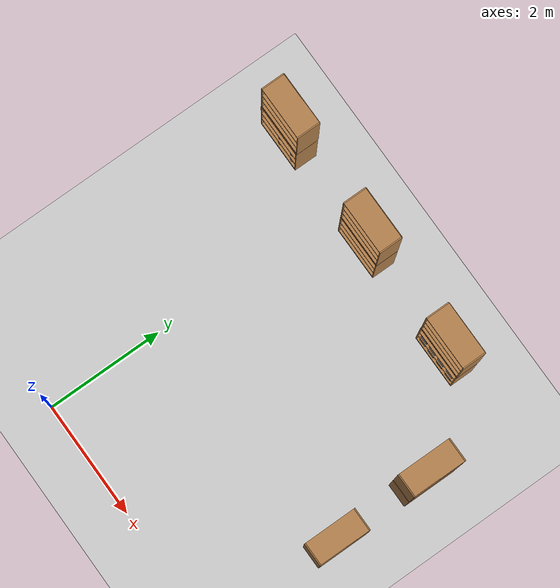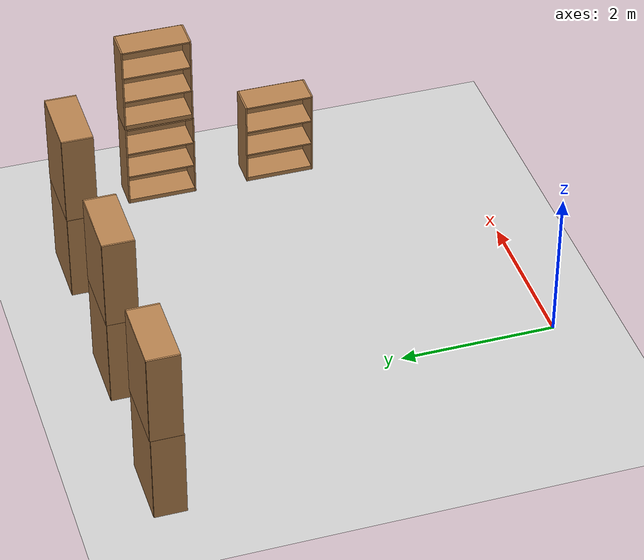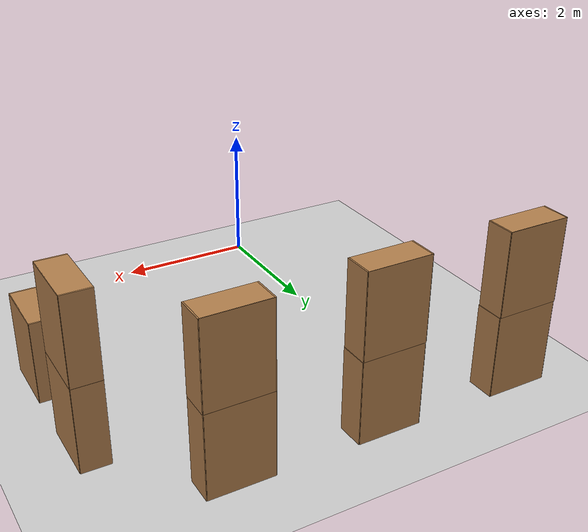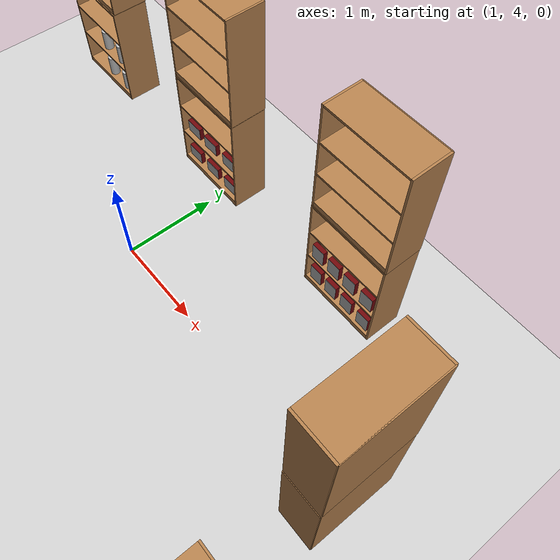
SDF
<sdf version="1.7">
 <world name="default">
  <model name="ground_plane">
   <static>1</static>
   <link name="link">
    <collision name="collision">
     <geometry><plane><normal>0 0 1</normal><size>100 100</size></plane></geometry>
     <surface><friction><ode><mu>100</mu><mu2>50</mu2></ode></friction></surface>
    </collision>
    <visual name="visual">
     <cast_shadows>0</cast_shadows>
     <geometry><plane><normal>0 0 1</normal><size>100 100</size></plane></geometry>
     <material>
      <script><uri>file://media/materials/scripts/gazebo.material</uri><name>Gazebo/Grey</name></script>
     </material>
    </visual>
   </link>
  </model>
  <model name="bookshelf">
   <static>1</static>
   <link name="link">
    <inertial><mass>1</mass></inertial>
    <collision name="back">
     <pose>0 0.005 0.6 0 -0 0</pose>
     <geometry><box><size>0.9 0.01 1.2</size></box></geometry>
    </collision>
    <visual name="visual1">
     <pose>0 0.005 0.6 0 -0 0</pose>
     <geometry><box><size>0.9 0.01 1.2</size></box></geometry>
     <material>
      <script><uri>file://media/materials/scripts/gazebo.material</uri><name>Gazebo/Wood</name></script>
     </material>
    </visual>
    <collision name="left_side">
     <pose>0.45 -0.195 0.6 0 -0 0</pose>
     <geometry><box><size>0.02 0.4 1.2</size></box></geometry>
    </collision>
    <visual name="visual2">
     <pose>0.45 -0.195 0.6 0 -0 0</pose>
     <geometry><box><size>0.02 0.4 1.2</size></box></geometry>
     <material>
      <script><uri>file://media/materials/scripts/gazebo.material</uri><name>Gazebo/Wood</name></script>
     </material>
    </visual>
    <collision name="right_side">
     <pose>-0.45 -0.195 0.6 0 -0 0</pose>
     <geometry><box><size>0.02 0.4 1.2</size></box></geometry>
    </collision>
    <visual name="visual3">
     <pose>-0.45 -0.195 0.6 0 -0 0</pose>
     <geometry><box><size>0.02 0.4 1.2</size></box></geometry>
     <material>
      <script><uri>file://media/materials/scripts/gazebo.material</uri><name>Gazebo/Wood</name></script>
     </material>
    </visual>
    <collision name="bottom">
     <pose>0 -0.195 0.03 0 -0 0</pose>
     <geometry><box><size>0.88 0.4 0.06</size></box></geometry>
    </collision>
    <visual name="visual4">
     <pose>0 -0.195 0.03 0 -0 0</pose>
     <geometry><box><size>0.88 0.4 0.06</size></box></geometry>
     <material>
      <script><uri>file://media/materials/scripts/gazebo.material</uri><name>Gazebo/Wood</name></script>
     </material>
    </visual>
    <collision name="top">
     <pose>0 -0.195 1.19 0 -0 0</pose>
     <geometry><box><size>0.88 0.4 0.02</size></box></geometry>
    </collision>
    <visual name="visual5">
     <pose>0 -0.195 1.19 0 -0 0</pose>
     <geometry><box><size>0.88 0.4 0.02</size></box></geometry>
     <material>
      <script><uri>file://media/materials/scripts/gazebo.material</uri><name>Gazebo/Wood</name></script>
     </material>
    </visual>
    <collision name="low_shelf">
     <pose>0 -0.195 0.43 0 -0 0</pose>
     <geometry><box><size>0.88 0.4 0.02</size></box></geometry>
    </collision>
    <visual name="visual6">
     <pose>0 -0.195 0.43 0 -0 0</pose>
     <geometry><box><size>0.88 0.4 0.02</size></box></geometry>
     <material>
      <script><uri>file://media/materials/scripts/gazebo.material</uri><name>Gazebo/Wood</name></script>
     </material>
    </visual>
    <collision name="high_shelf">
     <pose>0 -0.195 0.8 0 -0 0</pose>
     <geometry><box><size>0.88 0.4 0.02</size></box></geometry>
    </collision>
    <visual name="visual7">
     <pose>0 -0.195 0.8 0 -0 0</pose>
     <geometry><box><size>0.88 0.4 0.02</size></box></geometry>
     <material>
      <script><uri>file://media/materials/scripts/gazebo.material</uri><name>Gazebo/Wood</name></script>
     </material>
    </visual>
   </link>
   <pose>2.83268 5.58259 0 0 -0 0</pose>
  </model>
  <model name="bookshelf_1">
   <static>1</static>
   <link name="link">
    <inertial><mass>1</mass></inertial>
    <collision name="back">
     <pose>0 0.005 0.6 0 -0 0</pose>
     <geometry><box><size>0.9 0.01 1.2</size></box></geometry>
    </collision>
    <visual name="visual1">
     <pose>0 0.005 0.6 0 -0 0</pose>
     <geometry><box><size>0.9 0.01 1.2</size></box></geometry>
     <material>
      <script><uri>file://media/materials/scripts/gazebo.material</uri><name>Gazebo/Wood</name></script>
     </material>
    </visual>
    <collision name="left_side">
     <pose>0.45 -0.195 0.6 0 -0 0</pose>
     <geometry><box><size>0.02 0.4 1.2</size></box></geometry>
    </collision>
    <visual name="visual2">
     <pose>0.45 -0.195 0.6 0 -0 0</pose>
     <geometry><box><size>0.02 0.4 1.2</size></box></geometry>
     <material>
      <script><uri>file://media/materials/scripts/gazebo.material</uri><name>Gazebo/Wood</name></script>
     </material>
    </visual>
    <collision name="right_side">
     <pose>-0.45 -0.195 0.6 0 -0 0</pose>
     <geometry><box><size>0.02 0.4 1.2</size></box></geometry>
    </collision>
    <visual name="visual3">
     <pose>-0.45 -0.195 0.6 0 -0 0</pose>
     <geometry><box><size>0.02 0.4 1.2</size></box></geometry>
     <material>
      <script><uri>file://media/materials/scripts/gazebo.material</uri><name>Gazebo/Wood</name></script>
     </material>
    </visual>
    <collision name="bottom">
     <pose>0 -0.195 0.03 0 -0 0</pose>
     <geometry><box><size>0.88 0.4 0.06</size></box></geometry>
    </collision>
    <visual name="visual4">
     <pose>0 -0.195 0.03 0 -0 0</pose>
     <geometry><box><size>0.88 0.4 0.06</size></box></geometry>
     <material>
      <script><uri>file://media/materials/scripts/gazebo.material</uri><name>Gazebo/Wood</name></script>
     </material>
    </visual>
    <collision name="top">
     <pose>0 -0.195 1.19 0 -0 0</pose>
     <geometry><box><size>0.88 0.4 0.02</size></box></geometry>
    </collision>
    <visual name="visual5">
     <pose>0 -0.195 1.19 0 -0 0</pose>
     <geometry><box><size>0.88 0.4 0.02</size></box></geometry>
     <material>
      <script><uri>file://media/materials/scripts/gazebo.material</uri><name>Gazebo/Wood</name></script>
     </material>
    </visual>
    <collision name="low_shelf">
     <pose>0 -0.195 0.43 0 -0 0</pose>
     <geometry><box><size>0.88 0.4 0.02</size></box></geometry>
    </collision>
    <visual name="visual6">
     <pose>0 -0.195 0.43 0 -0 0</pose>
     <geometry><box><size>0.88 0.4 0.02</size></box></geometry>
     <material>
      <script><uri>file://media/materials/scripts/gazebo.material</uri><name>Gazebo/Wood</name></script>
     </material>
    </visual>
    <collision name="high_shelf">
     <pose>0 -0.195 0.8 0 -0 0</pose>
     <geometry><box><size>0.88 0.4 0.02</size></box></geometry>
    </collision>
    <visual name="visual7">
     <pose>0 -0.195 0.8 0 -0 0</pose>
     <geometry><box><size>0.88 0.4 0.02</size></box></geometry>
     <material>
      <script><uri>file://media/materials/scripts/gazebo.material</uri><name>Gazebo/Wood</name></script>
     </material>
    </visual>
   </link>
   <pose>0.770602 5.5901 0 0 -0 0</pose>
  </model>
  <model name="bookshelf_2_clone">
   <static>1</static>
   <link name="link">
    <inertial><mass>1</mass></inertial>
    <collision name="back">
     <pose>0 0.005 0.6 0 -0 0</pose>
     <geometry><box><size>0.9 0.01 1.2</size></box></geometry>
    </collision>
    <visual name="visual1">
     <pose>0 0.005 0.6 0 -0 0</pose>
     <geometry><box><size>0.9 0.01 1.2</size></box></geometry>
     <material>
      <script><uri>file://media/materials/scripts/gazebo.material</uri><name>Gazebo/Wood</name></script>
     </material>
    </visual>
    <collision name="left_side">
     <pose>0.45 -0.195 0.6 0 -0 0</pose>
     <geometry><box><size>0.02 0.4 1.2</size></box></geometry>
    </collision>
    <visual name="visual2">
     <pose>0.45 -0.195 0.6 0 -0 0</pose>
     <geometry><box><size>0.02 0.4 1.2</size></box></geometry>
     <material>
      <script><uri>file://media/materials/scripts/gazebo.material</uri><name>Gazebo/Wood</name></script>
     </material>
    </visual>
    <collision name="right_side">
     <pose>-0.45 -0.195 0.6 0 -0 0</pose>
     <geometry><box><size>0.02 0.4 1.2</size></box></geometry>
    </collision>
    <visual name="visual3">
     <pose>-0.45 -0.195 0.6 0 -0 0</pose>
     <geometry><box><size>0.02 0.4 1.2</size></box></geometry>
     <material>
      <script><uri>file://media/materials/scripts/gazebo.material</uri><name>Gazebo/Wood</name></script>
     </material>
    </visual>
    <collision name="bottom">
     <pose>0 -0.195 0.03 0 -0 0</pose>
     <geometry><box><size>0.88 0.4 0.06</size></box></geometry>
    </collision>
    <visual name="visual4">
     <pose>0 -0.195 0.03 0 -0 0</pose>
     <geometry><box><size>0.88 0.4 0.06</size></box></geometry>
     <material>
      <script><uri>file://media/materials/scripts/gazebo.material</uri><name>Gazebo/Wood</name></script>
     </material>
    </visual>
    <collision name="top">
     <pose>0 -0.195 1.19 0 -0 0</pose>
     <geometry><box><size>0.88 0.4 0.02</size></box></geometry>
    </collision>
    <visual name="visual5">
     <pose>0 -0.195 1.19 0 -0 0</pose>
     <geometry><box><size>0.88 0.4 0.02</size></box></geometry>
     <material>
      <script><uri>file://media/materials/scripts/gazebo.material</uri><name>Gazebo/Wood</name></script>
     </material>
    </visual>
    <collision name="low_shelf">
     <pose>0 -0.195 0.43 0 -0 0</pose>
     <geometry><box><size>0.88 0.4 0.02</size></box></geometry>
    </collision>
    <visual name="visual6">
     <pose>0 -0.195 0.43 0 -0 0</pose>
     <geometry><box><size>0.88 0.4 0.02</size></box></geometry>
     <material>
      <script><uri>file://media/materials/scripts/gazebo.material</uri><name>Gazebo/Wood</name></script>
     </material>
    </visual>
    <collision name="high_shelf">
     <pose>0 -0.195 0.8 0 -0 0</pose>
     <geometry><box><size>0.88 0.4 0.02</size></box></geometry>
    </collision>
    <visual name="visual7">
     <pose>0 -0.195 0.8 0 -0 0</pose>
     <geometry><box><size>0.88 0.4 0.02</size></box></geometry>
     <material>
      <script><uri>file://media/materials/scripts/gazebo.material</uri><name>Gazebo/Wood</name></script>
     </material>
    </visual>
   </link>
   <pose>-1.30264 5.59901 0 0 -0 0</pose>
  </model>
  <model name="bookshelf_3_clone">
   <static>1</static>
   <link name="link">
    <inertial><mass>1</mass></inertial>
    <collision name="back">
     <pose>0 0.005 0.6 0 -0 0</pose>
     <geometry><box><size>0.9 0.01 1.2</size></box></geometry>
    </collision>
    <visual name="visual1">
     <pose>0 0.005 0.6 0 -0 0</pose>
     <geometry><box><size>0.9 0.01 1.2</size></box></geometry>
     <material>
      <script><uri>file://media/materials/scripts/gazebo.material</uri><name>Gazebo/Wood</name></script>
     </material>
    </visual>
    <collision name="left_side">
     <pose>0.45 -0.195 0.6 0 -0 0</pose>
     <geometry><box><size>0.02 0.4 1.2</size></box></geometry>
    </collision>
    <visual name="visual2">
     <pose>0.45 -0.195 0.6 0 -0 0</pose>
     <geometry><box><size>0.02 0.4 1.2</size></box></geometry>
     <material>
      <script><uri>file://media/materials/scripts/gazebo.material</uri><name>Gazebo/Wood</name></script>
     </material>
    </visual>
    <collision name="right_side">
     <pose>-0.45 -0.195 0.6 0 -0 0</pose>
     <geometry><box><size>0.02 0.4 1.2</size></box></geometry>
    </collision>
    <visual name="visual3">
     <pose>-0.45 -0.195 0.6 0 -0 0</pose>
     <geometry><box><size>0.02 0.4 1.2</size></box></geometry>
     <material>
      <script><uri>file://media/materials/scripts/gazebo.material</uri><name>Gazebo/Wood</name></script>
     </material>
    </visual>
    <collision name="bottom">
     <pose>0 -0.195 0.03 0 -0 0</pose>
     <geometry><box><size>0.88 0.4 0.06</size></box></geometry>
    </collision>
    <visual name="visual4">
     <pose>0 -0.195 0.03 0 -0 0</pose>
     <geometry><box><size>0.88 0.4 0.06</size></box></geometry>
     <material>
      <script><uri>file://media/materials/scripts/gazebo.material</uri><name>Gazebo/Wood</name></script>
     </material>
    </visual>
    <collision name="top">
     <pose>0 -0.195 1.19 0 -0 0</pose>
     <geometry><box><size>0.88 0.4 0.02</size></box></geometry>
    </collision>
    <visual name="visual5">
     <pose>0 -0.195 1.19 0 -0 0</pose>
     <geometry><box><size>0.88 0.4 0.02</size></box></geometry>
     <material>
      <script><uri>file://media/materials/scripts/gazebo.material</uri><name>Gazebo/Wood</name></script>
     </material>
    </visual>
    <collision name="low_shelf">
     <pose>0 -0.195 0.43 0 -0 0</pose>
     <geometry><box><size>0.88 0.4 0.02</size></box></geometry>
    </collision>
    <visual name="visual6">
     <pose>0 -0.195 0.43 0 -0 0</pose>
     <geometry><box><size>0.88 0.4 0.02</size></box></geometry>
     <material>
      <script><uri>file://media/materials/scripts/gazebo.material</uri><name>Gazebo/Wood</name></script>
     </material>
    </visual>
    <collision name="high_shelf">
     <pose>0 -0.195 0.8 0 -0 0</pose>
     <geometry><box><size>0.88 0.4 0.02</size></box></geometry>
    </collision>
    <visual name="visual7">
     <pose>0 -0.195 0.8 0 -0 0</pose>
     <geometry><box><size>0.88 0.4 0.02</size></box></geometry>
     <material>
      <script><uri>file://media/materials/scripts/gazebo.material</uri><name>Gazebo/Wood</name></script>
     </material>
    </visual>
   </link>
   <pose>-1.30336 5.6079 1.20481 0 -0 0</pose>
  </model>
  <model name="bookshelf_3_clone_clone_0">
   <static>1</static>
   <link name="link">
    <inertial><mass>1</mass></inertial>
    <collision name="back">
     <pose>0 0.005 0.6 0 -0 0</pose>
     <geometry><box><size>0.9 0.01 1.2</size></box></geometry>
    </collision>
    <visual name="visual1">
     <pose>0 0.005 0.6 0 -0 0</pose>
     <geometry><box><size>0.9 0.01 1.2</size></box></geometry>
     <material>
      <script><uri>file://media/materials/scripts/gazebo.material</uri><name>Gazebo/Wood</name></script>
     </material>
    </visual>
    <collision name="left_side">
     <pose>0.45 -0.195 0.6 0 -0 0</pose>
     <geometry><box><size>0.02 0.4 1.2</size></box></geometry>
    </collision>
    <visual name="visual2">
     <pose>0.45 -0.195 0.6 0 -0 0</pose>
     <geometry><box><size>0.02 0.4 1.2</size></box></geometry>
     <material>
      <script><uri>file://media/materials/scripts/gazebo.material</uri><name>Gazebo/Wood</name></script>
     </material>
    </visual>
    <collision name="right_side">
     <pose>-0.45 -0.195 0.6 0 -0 0</pose>
     <geometry><box><size>0.02 0.4 1.2</size></box></geometry>
    </collision>
    <visual name="visual3">
     <pose>-0.45 -0.195 0.6 0 -0 0</pose>
     <geometry><box><size>0.02 0.4 1.2</size></box></geometry>
     <material>
      <script><uri>file://media/materials/scripts/gazebo.material</uri><name>Gazebo/Wood</name></script>
     </material>
    </visual>
    <collision name="bottom">
     <pose>0 -0.195 0.03 0 -0 0</pose>
     <geometry><box><size>0.88 0.4 0.06</size></box></geometry>
    </collision>
    <visual name="visual4">
     <pose>0 -0.195 0.03 0 -0 0</pose>
     <geometry><box><size>0.88 0.4 0.06</size></box></geometry>
     <material>
      <script><uri>file://media/materials/scripts/gazebo.material</uri><name>Gazebo/Wood</name></script>
     </material>
    </visual>
    <collision name="top">
     <pose>0 -0.195 1.19 0 -0 0</pose>
     <geometry><box><size>0.88 0.4 0.02</size></box></geometry>
    </collision>
    <visual name="visual5">
     <pose>0 -0.195 1.19 0 -0 0</pose>
     <geometry><box><size>0.88 0.4 0.02</size></box></geometry>
     <material>
      <script><uri>file://media/materials/scripts/gazebo.material</uri><name>Gazebo/Wood</name></script>
     </material>
    </visual>
    <collision name="low_shelf">
     <pose>0 -0.195 0.43 0 -0 0</pose>
     <geometry><box><size>0.88 0.4 0.02</size></box></geometry>
    </collision>
    <visual name="visual6">
     <pose>0 -0.195 0.43 0 -0 0</pose>
     <geometry><box><size>0.88 0.4 0.02</size></box></geometry>
     <material>
      <script><uri>file://media/materials/scripts/gazebo.material</uri><name>Gazebo/Wood</name></script>
     </material>
    </visual>
    <collision name="high_shelf">
     <pose>0 -0.195 0.8 0 -0 0</pose>
     <geometry><box><size>0.88 0.4 0.02</size></box></geometry>
    </collision>
    <visual name="visual7">
     <pose>0 -0.195 0.8 0 -0 0</pose>
     <geometry><box><size>0.88 0.4 0.02</size></box></geometry>
     <material>
      <script><uri>file://media/materials/scripts/gazebo.material</uri><name>Gazebo/Wood</name></script>
     </material>
    </visual>
   </link>
   <pose>0.76852 5.59426 1.20481 0 -0 0</pose>
  </model>
  <model name="bookshelf_3_clone_clone_1">
   <static>1</static>
   <link name="link">
    <inertial><mass>1</mass></inertial>
    <collision name="back">
     <pose>0 0.005 0.6 0 -0 0</pose>
     <geometry><box><size>0.9 0.01 1.2</size></box></geometry>
    </collision>
    <visual name="visual1">
     <pose>0 0.005 0.6 0 -0 0</pose>
     <geometry><box><size>0.9 0.01 1.2</size></box></geometry>
     <material>
      <script><uri>file://media/materials/scripts/gazebo.material</uri><name>Gazebo/Wood</name></script>
     </material>
    </visual>
    <collision name="left_side">
     <pose>0.45 -0.195 0.6 0 -0 0</pose>
     <geometry><box><size>0.02 0.4 1.2</size></box></geometry>
    </collision>
    <visual name="visual2">
     <pose>0.45 -0.195 0.6 0 -0 0</pose>
     <geometry><box><size>0.02 0.4 1.2</size></box></geometry>
     <material>
      <script><uri>file://media/materials/scripts/gazebo.material</uri><name>Gazebo/Wood</name></script>
     </material>
    </visual>
    <collision name="right_side">
     <pose>-0.45 -0.195 0.6 0 -0 0</pose>
     <geometry><box><size>0.02 0.4 1.2</size></box></geometry>
    </collision>
    <visual name="visual3">
     <pose>-0.45 -0.195 0.6 0 -0 0</pose>
     <geometry><box><size>0.02 0.4 1.2</size></box></geometry>
     <material>
      <script><uri>file://media/materials/scripts/gazebo.material</uri><name>Gazebo/Wood</name></script>
     </material>
    </visual>
    <collision name="bottom">
     <pose>0 -0.195 0.03 0 -0 0</pose>
     <geometry><box><size>0.88 0.4 0.06</size></box></geometry>
    </collision>
    <visual name="visual4">
     <pose>0 -0.195 0.03 0 -0 0</pose>
     <geometry><box><size>0.88 0.4 0.06</size></box></geometry>
     <material>
      <script><uri>file://media/materials/scripts/gazebo.material</uri><name>Gazebo/Wood</name></script>
     </material>
    </visual>
    <collision name="top">
     <pose>0 -0.195 1.19 0 -0 0</pose>
     <geometry><box><size>0.88 0.4 0.02</size></box></geometry>
    </collision>
    <visual name="visual5">
     <pose>0 -0.195 1.19 0 -0 0</pose>
     <geometry><box><size>0.88 0.4 0.02</size></box></geometry>
     <material>
      <script><uri>file://media/materials/scripts/gazebo.material</uri><name>Gazebo/Wood</name></script>
     </material>
    </visual>
    <collision name="low_shelf">
     <pose>0 -0.195 0.43 0 -0 0</pose>
     <geometry><box><size>0.88 0.4 0.02</size></box></geometry>
    </collision>
    <visual name="visual6">
     <pose>0 -0.195 0.43 0 -0 0</pose>
     <geometry><box><size>0.88 0.4 0.02</size></box></geometry>
     <material>
      <script><uri>file://media/materials/scripts/gazebo.material</uri><name>Gazebo/Wood</name></script>
     </material>
    </visual>
    <collision name="high_shelf">
     <pose>0 -0.195 0.8 0 -0 0</pose>
     <geometry><box><size>0.88 0.4 0.02</size></box></geometry>
    </collision>
    <visual name="visual7">
     <pose>0 -0.195 0.8 0 -0 0</pose>
     <geometry><box><size>0.88 0.4 0.02</size></box></geometry>
     <material>
      <script><uri>file://media/materials/scripts/gazebo.material</uri><name>Gazebo/Wood</name></script>
     </material>
    </visual>
   </link>
   <pose>2.83627 5.58516 1.20481 0 -0 0</pose>
  </model>
  <model name="bookshelf_4_clone">
   <static>1</static>
   <link name="link">
    <inertial><mass>1</mass></inertial>
    <collision name="back">
     <pose>0 0.005 0.6 0 -0 0</pose>
     <geometry><box><size>0.9 0.01 1.2</size></box></geometry>
    </collision>
    <visual name="visual1">
     <pose>0 0.005 0.6 0 -0 0</pose>
     <geometry><box><size>0.9 0.01 1.2</size></box></geometry>
     <material>
      <script><uri>file://media/materials/scripts/gazebo.material</uri><name>Gazebo/Wood</name></script>
     </material>
    </visual>
    <collision name="left_side">
     <pose>0.45 -0.195 0.6 0 -0 0</pose>
     <geometry><box><size>0.02 0.4 1.2</size></box></geometry>
    </collision>
    <visual name="visual2">
     <pose>0.45 -0.195 0.6 0 -0 0</pose>
     <geometry><box><size>0.02 0.4 1.2</size></box></geometry>
     <material>
      <script><uri>file://media/materials/scripts/gazebo.material</uri><name>Gazebo/Wood</name></script>
     </material>
    </visual>
    <collision name="right_side">
     <pose>-0.45 -0.195 0.6 0 -0 0</pose>
     <geometry><box><size>0.02 0.4 1.2</size></box></geometry>
    </collision>
    <visual name="visual3">
     <pose>-0.45 -0.195 0.6 0 -0 0</pose>
     <geometry><box><size>0.02 0.4 1.2</size></box></geometry>
     <material>
      <script><uri>file://media/materials/scripts/gazebo.material</uri><name>Gazebo/Wood</name></script>
     </material>
    </visual>
    <collision name="bottom">
     <pose>0 -0.195 0.03 0 -0 0</pose>
     <geometry><box><size>0.88 0.4 0.06</size></box></geometry>
    </collision>
    <visual name="visual4">
     <pose>0 -0.195 0.03 0 -0 0</pose>
     <geometry><box><size>0.88 0.4 0.06</size></box></geometry>
     <material>
      <script><uri>file://media/materials/scripts/gazebo.material</uri><name>Gazebo/Wood</name></script>
     </material>
    </visual>
    <collision name="top">
     <pose>0 -0.195 1.19 0 -0 0</pose>
     <geometry><box><size>0.88 0.4 0.02</size></box></geometry>
    </collision>
    <visual name="visual5">
     <pose>0 -0.195 1.19 0 -0 0</pose>
     <geometry><box><size>0.88 0.4 0.02</size></box></geometry>
     <material>
      <script><uri>file://media/materials/scripts/gazebo.material</uri><name>Gazebo/Wood</name></script>
     </material>
    </visual>
    <collision name="low_shelf">
     <pose>0 -0.195 0.43 0 -0 0</pose>
     <geometry><box><size>0.88 0.4 0.02</size></box></geometry>
    </collision>
    <visual name="visual6">
     <pose>0 -0.195 0.43 0 -0 0</pose>
     <geometry><box><size>0.88 0.4 0.02</size></box></geometry>
     <material>
      <script><uri>file://media/materials/scripts/gazebo.material</uri><name>Gazebo/Wood</name></script>
     </material>
    </visual>
    <collision name="high_shelf">
     <pose>0 -0.195 0.8 0 -0 0</pose>
     <geometry><box><size>0.88 0.4 0.02</size></box></geometry>
    </collision>
    <visual name="visual7">
     <pose>0 -0.195 0.8 0 -0 0</pose>
     <geometry><box><size>0.88 0.4 0.02</size></box></geometry>
     <material>
      <script><uri>file://media/materials/scripts/gazebo.material</uri><name>Gazebo/Wood</name></script>
     </material>
    </visual>
   </link>
   <pose>4.37345 3.97883 0 0 0 -1.5727</pose>
  </model>
  <model name="bookshelf_4_clone_0">
   <static>1</static>
   <link name="link">
    <inertial><mass>1</mass></inertial>
    <collision name="back">
     <pose>0 0.005 0.6 0 -0 0</pose>
     <geometry><box><size>0.9 0.01 1.2</size></box></geometry>
    </collision>
    <visual name="visual1">
     <pose>0 0.005 0.6 0 -0 0</pose>
     <geometry><box><size>0.9 0.01 1.2</size></box></geometry>
     <material>
      <script><uri>file://media/materials/scripts/gazebo.material</uri><name>Gazebo/Wood</name></script>
     </material>
    </visual>
    <collision name="left_side">
     <pose>0.45 -0.195 0.6 0 -0 0</pose>
     <geometry><box><size>0.02 0.4 1.2</size></box></geometry>
    </collision>
    <visual name="visual2">
     <pose>0.45 -0.195 0.6 0 -0 0</pose>
     <geometry><box><size>0.02 0.4 1.2</size></box></geometry>
     <material>
      <script><uri>file://media/materials/scripts/gazebo.material</uri><name>Gazebo/Wood</name></script>
     </material>
    </visual>
    <collision name="right_side">
     <pose>-0.45 -0.195 0.6 0 -0 0</pose>
     <geometry><box><size>0.02 0.4 1.2</size></box></geometry>
    </collision>
    <visual name="visual3">
     <pose>-0.45 -0.195 0.6 0 -0 0</pose>
     <geometry><box><size>0.02 0.4 1.2</size></box></geometry>
     <material>
      <script><uri>file://media/materials/scripts/gazebo.material</uri><name>Gazebo/Wood</name></script>
     </material>
    </visual>
    <collision name="bottom">
     <pose>0 -0.195 0.03 0 -0 0</pose>
     <geometry><box><size>0.88 0.4 0.06</size></box></geometry>
    </collision>
    <visual name="visual4">
     <pose>0 -0.195 0.03 0 -0 0</pose>
     <geometry><box><size>0.88 0.4 0.06</size></box></geometry>
     <material>
      <script><uri>file://media/materials/scripts/gazebo.material</uri><name>Gazebo/Wood</name></script>
     </material>
    </visual>
    <collision name="top">
     <pose>0 -0.195 1.19 0 -0 0</pose>
     <geometry><box><size>0.88 0.4 0.02</size></box></geometry>
    </collision>
    <visual name="visual5">
     <pose>0 -0.195 1.19 0 -0 0</pose>
     <geometry><box><size>0.88 0.4 0.02</size></box></geometry>
     <material>
      <script><uri>file://media/materials/scripts/gazebo.material</uri><name>Gazebo/Wood</name></script>
     </material>
    </visual>
    <collision name="low_shelf">
     <pose>0 -0.195 0.43 0 -0 0</pose>
     <geometry><box><size>0.88 0.4 0.02</size></box></geometry>
    </collision>
    <visual name="visual6">
     <pose>0 -0.195 0.43 0 -0 0</pose>
     <geometry><box><size>0.88 0.4 0.02</size></box></geometry>
     <material>
      <script><uri>file://media/materials/scripts/gazebo.material</uri><name>Gazebo/Wood</name></script>
     </material>
    </visual>
    <collision name="high_shelf">
     <pose>0 -0.195 0.8 0 -0 0</pose>
     <geometry><box><size>0.88 0.4 0.02</size></box></geometry>
    </collision>
    <visual name="visual7">
     <pose>0 -0.195 0.8 0 -0 0</pose>
     <geometry><box><size>0.88 0.4 0.02</size></box></geometry>
     <material>
      <script><uri>file://media/materials/scripts/gazebo.material</uri><name>Gazebo/Wood</name></script>
     </material>
    </visual>
   </link>
   <pose>4.37565 2.36025 0 0 0 -1.5727</pose>
  </model>
  <model name="bookshelf_4_clone_1_clone_clone">
   <static>1</static>
   <link name="link">
    <inertial><mass>1</mass></inertial>
    <collision name="back">
     <pose>0 0.005 0.6 0 -0 0</pose>
     <geometry><box><size>0.9 0.01 1.2</size></box></geometry>
    </collision>
    <visual name="visual1">
     <pose>0 0.005 0.6 0 -0 0</pose>
     <geometry><box><size>0.9 0.01 1.2</size></box></geometry>
     <material>
      <script><uri>file://media/materials/scripts/gazebo.material</uri><name>Gazebo/Wood</name></script>
     </material>
    </visual>
    <collision name="left_side">
     <pose>0.45 -0.195 0.6 0 -0 0</pose>
     <geometry><box><size>0.02 0.4 1.2</size></box></geometry>
    </collision>
    <visual name="visual2">
     <pose>0.45 -0.195 0.6 0 -0 0</pose>
     <geometry><box><size>0.02 0.4 1.2</size></box></geometry>
     <material>
      <script><uri>file://media/materials/scripts/gazebo.material</uri><name>Gazebo/Wood</name></script>
     </material>
    </visual>
    <collision name="right_side">
     <pose>-0.45 -0.195 0.6 0 -0 0</pose>
     <geometry><box><size>0.02 0.4 1.2</size></box></geometry>
    </collision>
    <visual name="visual3">
     <pose>-0.45 -0.195 0.6 0 -0 0</pose>
     <geometry><box><size>0.02 0.4 1.2</size></box></geometry>
     <material>
      <script><uri>file://media/materials/scripts/gazebo.material</uri><name>Gazebo/Wood</name></script>
     </material>
    </visual>
    <collision name="bottom">
     <pose>0 -0.195 0.03 0 -0 0</pose>
     <geometry><box><size>0.88 0.4 0.06</size></box></geometry>
    </collision>
    <visual name="visual4">
     <pose>0 -0.195 0.03 0 -0 0</pose>
     <geometry><box><size>0.88 0.4 0.06</size></box></geometry>
     <material>
      <script><uri>file://media/materials/scripts/gazebo.material</uri><name>Gazebo/Wood</name></script>
     </material>
    </visual>
    <collision name="top">
     <pose>0 -0.195 1.19 0 -0 0</pose>
     <geometry><box><size>0.88 0.4 0.02</size></box></geometry>
    </collision>
    <visual name="visual5">
     <pose>0 -0.195 1.19 0 -0 0</pose>
     <geometry><box><size>0.88 0.4 0.02</size></box></geometry>
     <material>
      <script><uri>file://media/materials/scripts/gazebo.material</uri><name>Gazebo/Wood</name></script>
     </material>
    </visual>
    <collision name="low_shelf">
     <pose>0 -0.195 0.43 0 -0 0</pose>
     <geometry><box><size>0.88 0.4 0.02</size></box></geometry>
    </collision>
    <visual name="visual6">
     <pose>0 -0.195 0.43 0 -0 0</pose>
     <geometry><box><size>0.88 0.4 0.02</size></box></geometry>
     <material>
      <script><uri>file://media/materials/scripts/gazebo.material</uri><name>Gazebo/Wood</name></script>
     </material>
    </visual>
    <collision name="high_shelf">
     <pose>0 -0.195 0.8 0 -0 0</pose>
     <geometry><box><size>0.88 0.4 0.02</size></box></geometry>
    </collision>
    <visual name="visual7">
     <pose>0 -0.195 0.8 0 -0 0</pose>
     <geometry><box><size>0.88 0.4 0.02</size></box></geometry>
     <material>
      <script><uri>file://media/materials/scripts/gazebo.material</uri><name>Gazebo/Wood</name></script>
     </material>
    </visual>
   </link>
   <pose>4.37481 3.98386 1.20741 0 0 -1.5727</pose>
  </model>
  <model name="beer_1_clone_0">
   <link name="link">
    <pose>0 0 0.115 0 -0 0</pose>
    <inertial>
     <mass>0.39</mass>
     <inertia><ixx>0.00058</ixx><ixy>0</ixy><ixz>0</ixz><iyy>0.00058</iyy><iyz>0</iyz><izz>0.00019</izz></inertia>
    </inertial>
    <collision name="collision">
     <geometry><cylinder><radius>0.055</radius><length>0.23</length></cylinder></geometry>
    </collision>
    <visual name="visual">
     <geometry><cylinder><radius>0.055</radius><length>0.23</length></cylinder></geometry>
     <material>
      <script>
       <uri>model://beer/materials/scripts</uri>
       <uri>model://beer/materials/textures</uri>
       <name>Beer/Diffuse</name>
      </script>
     </material>
    </visual>
   </link>
   <pose>-1.32023 5.28922 0.05999 1e-06 -2.7e-05 0.016028</pose>
  </model>
  <model name="beer_1_clone_1">
   <link name="link">
    <pose>0 0 0.115 0 -0 0</pose>
    <inertial>
     <mass>0.39</mass>
     <inertia><ixx>0.00058</ixx><ixy>0</ixy><ixz>0</ixz><iyy>0.00058</iyy><iyz>0</iyz><izz>0.00019</izz></inertia>
    </inertial>
    <collision name="collision">
     <geometry><cylinder><radius>0.055</radius><length>0.23</length></cylinder></geometry>
    </collision>
    <visual name="visual">
     <geometry><cylinder><radius>0.055</radius><length>0.23</length></cylinder></geometry>
     <material>
      <script>
       <uri>model://beer/materials/scripts</uri>
       <uri>model://beer/materials/textures</uri>
       <name>Beer/Diffuse</name>
      </script>
     </material>
    </visual>
   </link>
   <pose>-0.999823 5.28632 0.060002 2.4e-05 1.8e-05 0.0064</pose>
  </model>
  <model name="beer_3_clone_1_clone_0">
   <link name="link">
    <pose>0 0 0.115 0 -0 0</pose>
    <inertial>
     <mass>0.39</mass>
     <inertia><ixx>0.00058</ixx><ixy>0</ixy><ixz>0</ixz><iyy>0.00058</iyy><iyz>0</iyz><izz>0.00019</izz></inertia>
    </inertial>
    <collision name="collision">
     <geometry><cylinder><radius>0.055</radius><length>0.23</length></cylinder></geometry>
    </collision>
    <visual name="visual">
     <geometry><cylinder><radius>0.055</radius><length>0.23</length></cylinder></geometry>
     <material>
      <script>
       <uri>model://beer/materials/scripts</uri>
       <uri>model://beer/materials/textures</uri>
       <name>Beer/Diffuse</name>
      </script>
     </material>
    </visual>
   </link>
   <pose>-1.32657 5.29021 0.440001 -1e-06 2.6e-05 0.018146</pose>
  </model>
  <model name="beer_3_clone_1_clone_1">
   <link name="link">
    <pose>0 0 0.115 0 -0 0</pose>
    <inertial>
     <mass>0.39</mass>
     <inertia><ixx>0.00058</ixx><ixy>0</ixy><ixz>0</ixz><iyy>0.00058</iyy><iyz>0</iyz><izz>0.00019</izz></inertia>
    </inertial>
    <collision name="collision">
     <geometry><cylinder><radius>0.055</radius><length>0.23</length></cylinder></geometry>
    </collision>
    <visual name="visual">
     <geometry><cylinder><radius>0.055</radius><length>0.23</length></cylinder></geometry>
     <material>
      <script>
       <uri>model://beer/materials/scripts</uri>
       <uri>model://beer/materials/textures</uri>
       <name>Beer/Diffuse</name>
      </script>
     </material>
    </visual>
   </link>
   <pose>-1.01323 5.28776 0.440001 2.4e-05 1.2e-05 0.000534</pose>
  </model>
  <model name="biscuit_box">
   <link name="link">
    <pose>0 0 0.025 0 -0 0</pose>
    <visual name="visual">
     <geometry><box><size>0.2 0.15 0.05</size></box></geometry>
     <material>
      <ambient>0.423 0.019 0.035 1</ambient>
      <diffuse>0.423 0.019 0.035 1</diffuse>
      <specular>0.01 0.01 0.01 1</specular>
      <emissive>0 0 0 1</emissive>
     </material>
    </visual>
    <collision name="collision"><geometry><box><size>0.1 0.1 0.15</size></box></geometry></collision>
   </link>
   <link name="link_1">
    <pose>0 0 0.05 0 -0 0</pose>
    <visual name="visual">
     <geometry><box><size>0.2 0.15 0.001</size></box></geometry>
     <material>
      <script>
       <uri>model://biscuit_box/materials/scripts</uri>
       <uri>model://biscuit_box/materials/textures</uri>
       <name>biscuit_pat</name>
      </script>
     </material>
    </visual>
    <collision name="collision"><geometry><box><size>0.1 0.1 0.15</size></box></geometry></collision>
   </link>
   <static>1</static>
   <pose>0.456028 5.28743 0.137981 1.59184 -0 0</pose>
  </model>
  <model name="biscuit_box_clone">
   <link name="link">
    <pose>0 0 0.025 0 -0 0</pose>
    <visual name="visual">
     <geometry><box><size>0.2 0.15 0.05</size></box></geometry>
     <material>
      <ambient>0.423 0.019 0.035 1</ambient>
      <diffuse>0.423 0.019 0.035 1</diffuse>
      <specular>0.01 0.01 0.01 1</specular>
      <emissive>0 0 0 1</emissive>
     </material>
    </visual>
    <collision name="collision"><geometry><box><size>0.1 0.1 0.15</size></box></geometry></collision>
   </link>
   <link name="link_1">
    <pose>0 0 0.05 0 -0 0</pose>
    <visual name="visual">
     <geometry><box><size>0.2 0.15 0.001</size></box></geometry>
     <material>
      <script>
       <uri>model://biscuit_box/materials/scripts</uri>
       <uri>model://biscuit_box/materials/textures</uri>
       <name>biscuit_pat</name>
      </script>
     </material>
    </visual>
    <collision name="collision"><geometry><box><size>0.1 0.1 0.15</size></box></geometry></collision>
   </link>
   <static>1</static>
   <pose>0.756443 5.29336 0.137981 1.59184 -0 0</pose>
  </model>
  <model name="biscuit_box_clone_clone">
   <link name="link">
    <pose>0 0 0.025 0 -0 0</pose>
    <visual name="visual">
     <geometry><box><size>0.2 0.15 0.05</size></box></geometry>
     <material>
      <ambient>0.423 0.019 0.035 1</ambient>
      <diffuse>0.423 0.019 0.035 1</diffuse>
      <specular>0.01 0.01 0.01 1</specular>
      <emissive>0 0 0 1</emissive>
     </material>
    </visual>
    <collision name="collision"><geometry><box><size>0.1 0.1 0.15</size></box></geometry></collision>
   </link>
   <link name="link_1">
    <pose>0 0 0.05 0 -0 0</pose>
    <visual name="visual">
     <geometry><box><size>0.2 0.15 0.001</size></box></geometry>
     <material>
      <script>
       <uri>model://biscuit_box/materials/scripts</uri>
       <uri>model://biscuit_box/materials/textures</uri>
       <name>biscuit_pat</name>
      </script>
     </material>
    </visual>
    <collision name="collision"><geometry><box><size>0.1 0.1 0.15</size></box></geometry></collision>
   </link>
   <static>1</static>
   <pose>1.062 5.29498 0.137981 1.59184 -0 0</pose>
  </model>
  <model name="biscuit_box_clone_0_clone">
   <link name="link">
    <pose>0 0 0.025 0 -0 0</pose>
    <visual name="visual">
     <geometry><box><size>0.2 0.15 0.05</size></box></geometry>
     <material>
      <ambient>0.423 0.019 0.035 1</ambient>
      <diffuse>0.423 0.019 0.035 1</diffuse>
      <specular>0.01 0.01 0.01 1</specular>
      <emissive>0 0 0 1</emissive>
     </material>
    </visual>
    <collision name="collision"><geometry><box><size>0.1 0.1 0.15</size></box></geometry></collision>
   </link>
   <link name="link_1">
    <pose>0 0 0.05 0 -0 0</pose>
    <visual name="visual">
     <geometry><box><size>0.2 0.15 0.001</size></box></geometry>
     <material>
      <script>
       <uri>model://biscuit_box/materials/scripts</uri>
       <uri>model://biscuit_box/materials/textures</uri>
       <name>biscuit_pat</name>
      </script>
     </material>
    </visual>
    <collision name="collision"><geometry><box><size>0.1 0.1 0.15</size></box></geometry></collision>
   </link>
   <static>1</static>
   <pose>0.752248 5.29333 0.517024 1.59184 -0 0</pose>
  </model>
  <model name="biscuit_box_clone_0_clone_0">
   <link name="link">
    <pose>0 0 0.025 0 -0 0</pose>
    <visual name="visual">
     <geometry><box><size>0.2 0.15 0.05</size></box></geometry>
     <material>
      <ambient>0.423 0.019 0.035 1</ambient>
      <diffuse>0.423 0.019 0.035 1</diffuse>
      <specular>0.01 0.01 0.01 1</specular>
      <emissive>0 0 0 1</emissive>
     </material>
    </visual>
    <collision name="collision"><geometry><box><size>0.1 0.1 0.15</size></box></geometry></collision>
   </link>
   <link name="link_1">
    <pose>0 0 0.05 0 -0 0</pose>
    <visual name="visual">
     <geometry><box><size>0.2 0.15 0.001</size></box></geometry>
     <material>
      <script>
       <uri>model://biscuit_box/materials/scripts</uri>
       <uri>model://biscuit_box/materials/textures</uri>
       <name>biscuit_pat</name>
      </script>
     </material>
    </visual>
    <collision name="collision"><geometry><box><size>0.1 0.1 0.15</size></box></geometry></collision>
   </link>
   <static>1</static>
   <pose>0.464373 5.29635 0.517024 1.59184 -0 0</pose>
  </model>
  <model name="biscuit_box_clone_0_clone_clone">
   <link name="link">
    <pose>0 0 0.025 0 -0 0</pose>
    <visual name="visual">
     <geometry><box><size>0.2 0.15 0.05</size></box></geometry>
     <material>
      <ambient>0.423 0.019 0.035 1</ambient>
      <diffuse>0.423 0.019 0.035 1</diffuse>
      <specular>0.01 0.01 0.01 1</specular>
      <emissive>0 0 0 1</emissive>
     </material>
    </visual>
    <collision name="collision"><geometry><box><size>0.1 0.1 0.15</size></box></geometry></collision>
   </link>
   <link name="link_1">
    <pose>0 0 0.05 0 -0 0</pose>
    <visual name="visual">
     <geometry><box><size>0.2 0.15 0.001</size></box></geometry>
     <material>
      <script>
       <uri>model://biscuit_box/materials/scripts</uri>
       <uri>model://biscuit_box/materials/textures</uri>
       <name>biscuit_pat</name>
      </script>
     </material>
    </visual>
    <collision name="collision"><geometry><box><size>0.1 0.1 0.15</size></box></geometry></collision>
   </link>
   <static>1</static>
   <pose>1.06428 5.29499 0.517024 1.59184 -0 0</pose>
  </model>
  <model name="biscuit_box_clone_clone_clone_clone">
   <link name="link">
    <pose>0 0 0.025 0 -0 0</pose>
    <visual name="visual">
     <geometry><box><size>0.2 0.15 0.05</size></box></geometry>
     <material>
      <ambient>0.423 0.019 0.035 1</ambient>
      <diffuse>0.423 0.019 0.035 1</diffuse>
      <specular>0.01 0.01 0.01 1</specular>
      <emissive>0 0 0 1</emissive>
     </material>
    </visual>
    <collision name="collision"><geometry><box><size>0.1 0.1 0.15</size></box></geometry></collision>
   </link>
   <link name="link_1">
    <pose>0 0 0.05 0 -0 0</pose>
    <visual name="visual">
     <geometry><box><size>0.2 0.15 0.001</size></box></geometry>
     <material>
      <script>
       <uri>model://biscuit_box/materials/scripts</uri>
       <uri>model://biscuit_box/materials/textures</uri>
       <name>biscuit_pat</name>
      </script>
     </material>
    </visual>
    <collision name="collision"><geometry><box><size>0.1 0.1 0.15</size></box></geometry></collision>
   </link>
   <static>1</static>
   <pose>2.71586 5.2638 0.162905 -2.92419 -1.54924 -1.78824</pose>
  </model>
  <model name="biscuit_box_clone_clone_clone_clone_clone">
   <link name="link">
    <pose>0 0 0.025 0 -0 0</pose>
    <visual name="visual">
     <geometry><box><size>0.2 0.15 0.05</size></box></geometry>
     <material>
      <ambient>0.423 0.019 0.035 1</ambient>
      <diffuse>0.423 0.019 0.035 1</diffuse>
      <specular>0.01 0.01 0.01 1</specular>
      <emissive>0 0 0 1</emissive>
     </material>
    </visual>
    <collision name="collision"><geometry><box><size>0.1 0.1 0.15</size></box></geometry></collision>
   </link>
   <link name="link_1">
    <pose>0 0 0.05 0 -0 0</pose>
    <visual name="visual">
     <geometry><box><size>0.2 0.15 0.001</size></box></geometry>
     <material>
      <script>
       <uri>model://biscuit_box/materials/scripts</uri>
       <uri>model://biscuit_box/materials/textures</uri>
       <name>biscuit_pat</name>
      </script>
     </material>
    </visual>
    <collision name="collision"><geometry><box><size>0.1 0.1 0.15</size></box></geometry></collision>
   </link>
   <static>1</static>
   <pose>2.50305 5.26523 0.162905 -2.92419 -1.54924 -1.78824</pose>
  </model>
  <model name="biscuit_box_clone_clone_clone_clone_clone_0">
   <link name="link">
    <pose>0 0 0.025 0 -0 0</pose>
    <visual name="visual">
     <geometry><box><size>0.2 0.15 0.05</size></box></geometry>
     <material>
      <ambient>0.423 0.019 0.035 1</ambient>
      <diffuse>0.423 0.019 0.035 1</diffuse>
      <specular>0.01 0.01 0.01 1</specular>
      <emissive>0 0 0 1</emissive>
     </material>
    </visual>
    <collision name="collision"><geometry><box><size>0.1 0.1 0.15</size></box></geometry></collision>
   </link>
   <link name="link_1">
    <pose>0 0 0.05 0 -0 0</pose>
    <visual name="visual">
     <geometry><box><size>0.2 0.15 0.001</size></box></geometry>
     <material>
      <script>
       <uri>model://biscuit_box/materials/scripts</uri>
       <uri>model://biscuit_box/materials/textures</uri>
       <name>biscuit_pat</name>
      </script>
     </material>
    </visual>
    <collision name="collision"><geometry><box><size>0.1 0.1 0.15</size></box></geometry></collision>
   </link>
   <static>1</static>
   <pose>2.93276 5.26818 0.162905 -2.92419 -1.54924 -1.78824</pose>
  </model>
  <model name="biscuit_box_clone_clone_clone_clone_clone_1_clone">
   <link name="link">
    <pose>0 0 0.025 0 -0 0</pose>
    <visual name="visual">
     <geometry><box><size>0.2 0.15 0.05</size></box></geometry>
     <material>
      <ambient>0.423 0.019 0.035 1</ambient>
      <diffuse>0.423 0.019 0.035 1</diffuse>
      <specular>0.01 0.01 0.01 1</specular>
      <emissive>0 0 0 1</emissive>
     </material>
    </visual>
    <collision name="collision"><geometry><box><size>0.1 0.1 0.15</size></box></geometry></collision>
   </link>
   <link name="link_1">
    <pose>0 0 0.05 0 -0 0</pose>
    <visual name="visual">
     <geometry><box><size>0.2 0.15 0.001</size></box></geometry>
     <material>
      <script>
       <uri>model://biscuit_box/materials/scripts</uri>
       <uri>model://biscuit_box/materials/textures</uri>
       <name>biscuit_pat</name>
      </script>
     </material>
    </visual>
    <collision name="collision"><geometry><box><size>0.1 0.1 0.15</size></box></geometry></collision>
   </link>
   <static>1</static>
   <pose>2.93026 5.25848 0.541315 -2.92419 -1.54924 -1.78824</pose>
  </model>
  <model name="biscuit_box_clone_clone_clone_clone_clone_1_clone_clone">
   <link name="link">
    <pose>0 0 0.025 0 -0 0</pose>
    <visual name="visual">
     <geometry><box><size>0.2 0.15 0.05</size></box></geometry>
     <material>
      <ambient>0.423 0.019 0.035 1</ambient>
      <diffuse>0.423 0.019 0.035 1</diffuse>
      <specular>0.01 0.01 0.01 1</specular>
      <emissive>0 0 0 1</emissive>
     </material>
    </visual>
    <collision name="collision"><geometry><box><size>0.1 0.1 0.15</size></box></geometry></collision>
   </link>
   <link name="link_1">
    <pose>0 0 0.05 0 -0 0</pose>
    <visual name="visual">
     <geometry><box><size>0.2 0.15 0.001</size></box></geometry>
     <material>
      <script>
       <uri>model://biscuit_box/materials/scripts</uri>
       <uri>model://biscuit_box/materials/textures</uri>
       <name>biscuit_pat</name>
      </script>
     </material>
    </visual>
    <collision name="collision"><geometry><box><size>0.1 0.1 0.15</size></box></geometry></collision>
   </link>
   <static>1</static>
   <pose>3.1536 5.26061 0.541315 -2.92419 -1.54924 -1.78824</pose>
  </model>
  <model name="biscuit_box_clone_clone_clone_clone_clone_0_clone">
   <link name="link">
    <pose>0 0 0.025 0 -0 0</pose>
    <visual name="visual">
     <geometry><box><size>0.2 0.15 0.05</size></box></geometry>
     <material>
      <ambient>0.423 0.019 0.035 1</ambient>
      <diffuse>0.423 0.019 0.035 1</diffuse>
      <specular>0.01 0.01 0.01 1</specular>
      <emissive>0 0 0 1</emissive>
     </material>
    </visual>
    <collision name="collision"><geometry><box><size>0.1 0.1 0.15</size></box></geometry></collision>
   </link>
   <link name="link_1">
    <pose>0 0 0.05 0 -0 0</pose>
    <visual name="visual">
     <geometry><box><size>0.2 0.15 0.001</size></box></geometry>
     <material>
      <script>
       <uri>model://biscuit_box/materials/scripts</uri>
       <uri>model://biscuit_box/materials/textures</uri>
       <name>biscuit_pat</name>
      </script>
     </material>
    </visual>
    <collision name="collision"><geometry><box><size>0.1 0.1 0.15</size></box></geometry></collision>
   </link>
   <static>1</static>
   <pose>3.16156 5.26581 0.162905 -2.92419 -1.54924 -1.78824</pose>
  </model>
  <model name="biscuit_box_clone_clone_clone_clone_clone_1_clone_clone_0">
   <link name="link">
    <pose>0 0 0.025 0 -0 0</pose>
    <visual name="visual">
     <geometry><box><size>0.2 0.15 0.05</size></box></geometry>
     <material>
      <ambient>0.423 0.019 0.035 1</ambient>
      <diffuse>0.423 0.019 0.035 1</diffuse>
      <specular>0.01 0.01 0.01 1</specular>
      <emissive>0 0 0 1</emissive>
     </material>
    </visual>
    <collision name="collision"><geometry><box><size>0.1 0.1 0.15</size></box></geometry></collision>
   </link>
   <link name="link_1">
    <pose>0 0 0.05 0 -0 0</pose>
    <visual name="visual">
     <geometry><box><size>0.2 0.15 0.001</size></box></geometry>
     <material>
      <script>
       <uri>model://biscuit_box/materials/scripts</uri>
       <uri>model://biscuit_box/materials/textures</uri>
       <name>biscuit_pat</name>
      </script>
     </material>
    </visual>
    <collision name="collision"><geometry><box><size>0.1 0.1 0.15</size></box></geometry></collision>
   </link>
   <static>1</static>
   <pose>2.71958 5.25709 0.541315 -2.92419 -1.54924 -1.78824</pose>
  </model>
  <model name="biscuit_box_clone_clone_clone_clone_clone_1_clone_clone_1">
   <link name="link">
    <pose>0 0 0.025 0 -0 0</pose>
    <visual name="visual">
     <geometry><box><size>0.2 0.15 0.05</size></box></geometry>
     <material>
      <ambient>0.423 0.019 0.035 1</ambient>
      <diffuse>0.423 0.019 0.035 1</diffuse>
      <specular>0.01 0.01 0.01 1</specular>
      <emissive>0 0 0 1</emissive>
     </material>
    </visual>
    <collision name="collision"><geometry><box><size>0.1 0.1 0.15</size></box></geometry></collision>
   </link>
   <link name="link_1">
    <pose>0 0 0.05 0 -0 0</pose>
    <visual name="visual">
     <geometry><box><size>0.2 0.15 0.001</size></box></geometry>
     <material>
      <script>
       <uri>model://biscuit_box/materials/scripts</uri>
       <uri>model://biscuit_box/materials/textures</uri>
       <name>biscuit_pat</name>
      </script>
     </material>
    </visual>
    <collision name="collision"><geometry><box><size>0.1 0.1 0.15</size></box></geometry></collision>
   </link>
   <static>1</static>
   <pose>2.5071 5.25569 0.541315 -2.92419 -1.54924 -1.78824</pose>
  </model>
 </world>
</sdf>
